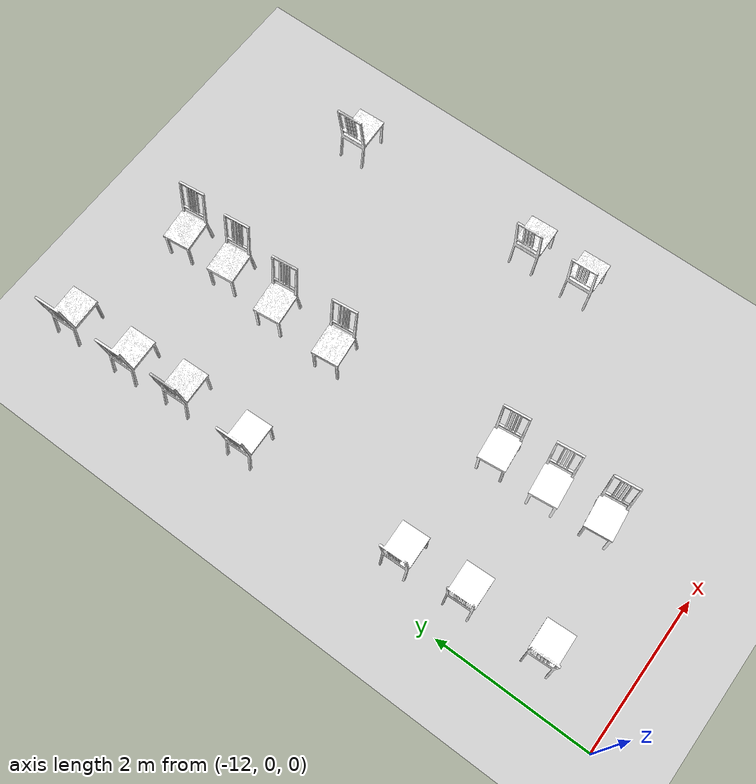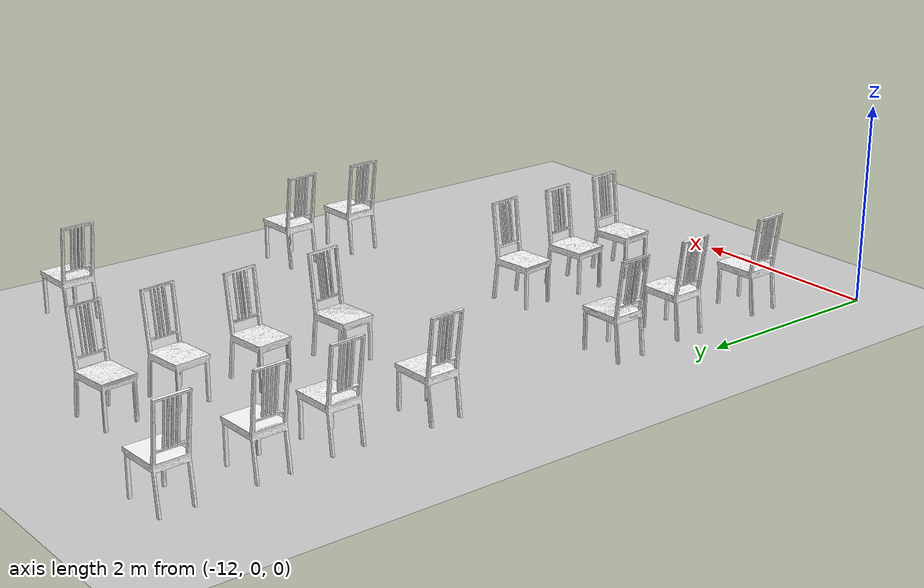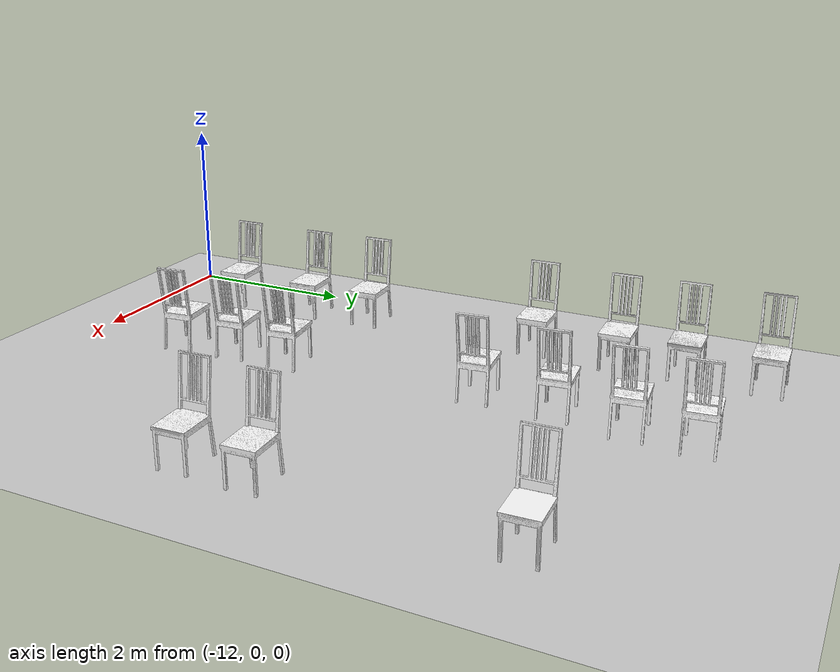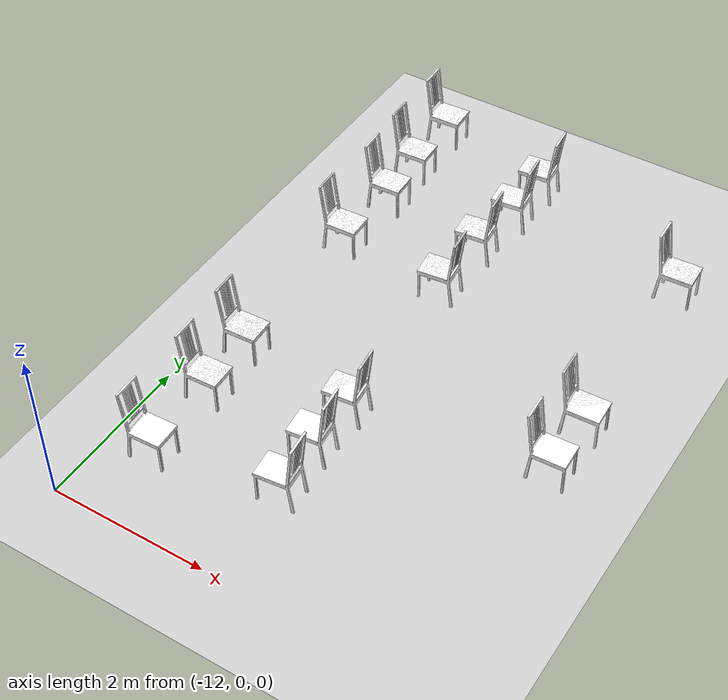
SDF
<sdf version="1.6">
 <world name="default">
  <model name="ground_plane">
   <static>1</static>
   <link name="link">
    <collision name="collision">
     <geometry><plane><normal>0 0 1</normal><size>100 100</size></plane></geometry>
     <surface>
      <contact><collide_bitmask>65535</collide_bitmask></contact>
      <friction><ode><mu>100</mu><mu2>50</mu2></ode></friction>
     </surface>
    </collision>
    <visual name="visual">
     <cast_shadows>0</cast_shadows>
     <geometry><plane><normal>0 0 1</normal><size>100 100</size></plane></geometry>
     <material>
      <script><uri>file://media/materials/scripts/gazebo.material</uri><name>Gazebo/Grey</name></script>
     </material>
    </visual>
   </link>
  </model>
  <model name="chair_ikea_borje_clone_6">
   <link name="base_link">
    <inertial>
     <mass>1</mass>
     <inertia><ixx>1</ixx><ixy>0</ixy><ixz>0</ixz><iyy>1</iyy><iyz>0</iyz><izz>1</izz></inertia>
    </inertial>
    <visual name="base_link_visual">
     <geometry><mesh><scale>1 1 1</scale><uri>model://chair_ikea_borje/meshes/model.dae</uri></mesh></geometry>
    </visual>
    <collision name="base_link_collision">
     <geometry><mesh><uri>model://chair_ikea_borje/meshes/model.dae</uri></mesh></geometry>
     <surface>
      <friction>
       <ode><mu>1</mu><mu2>1</mu2><fdir1>0 0 0</fdir1><slip1>0</slip1><slip2>0</slip2></ode>
       <torsional>
        <coefficient>1</coefficient>
        <patch_radius>0</patch_radius>
        <surface_radius>0</surface_radius>
        <use_patch_radius>1</use_patch_radius>
        <ode><slip>0</slip></ode>
       </torsional>
      </friction>
      <bounce><restitution_coefficient>0</restitution_coefficient><threshold>1e+06</threshold></bounce>
      <contact>
       <collide_without_contact>0</collide_without_contact>
       <collide_without_contact_bitmask>1</collide_without_contact_bitmask>
       <collide_bitmask>1</collide_bitmask>
       <ode>
        <soft_cfm>0</soft_cfm>
        <soft_erp>0.2</soft_erp>
        <kp>1e+13</kp>
        <kd>1</kd>
        <max_vel>0.01</max_vel>
        <min_depth>0</min_depth>
       </ode>
       <bullet>
        <split_impulse>1</split_impulse>
        <split_impulse_penetration_threshold>-0.01</split_impulse_penetration_threshold>
        <soft_cfm>0</soft_cfm>
        <soft_erp>0.2</soft_erp>
        <kp>1e+13</kp>
        <kd>1</kd>
       </bullet>
      </contact>
     </surface>
    </collision>
   </link>
   <static>1</static>
   <pose>-9.83974 7.21158 0 0 0 -1.46428</pose>
  </model>
  <model name="chair_ikea_borje_clone_7">
   <link name="base_link">
    <inertial>
     <mass>1</mass>
     <inertia><ixx>1</ixx><ixy>0</ixy><ixz>0</ixz><iyy>1</iyy><iyz>0</iyz><izz>1</izz></inertia>
    </inertial>
    <visual name="base_link_visual">
     <geometry><mesh><scale>1 1 1</scale><uri>model://chair_ikea_borje/meshes/model.dae</uri></mesh></geometry>
    </visual>
    <collision name="base_link_collision">
     <geometry><mesh><uri>model://chair_ikea_borje/meshes/model.dae</uri></mesh></geometry>
     <surface>
      <friction>
       <ode><mu>1</mu><mu2>1</mu2><fdir1>0 0 0</fdir1><slip1>0</slip1><slip2>0</slip2></ode>
       <torsional>
        <coefficient>1</coefficient>
        <patch_radius>0</patch_radius>
        <surface_radius>0</surface_radius>
        <use_patch_radius>1</use_patch_radius>
        <ode><slip>0</slip></ode>
       </torsional>
      </friction>
      <bounce><restitution_coefficient>0</restitution_coefficient><threshold>1e+06</threshold></bounce>
      <contact>
       <collide_without_contact>0</collide_without_contact>
       <collide_without_contact_bitmask>1</collide_without_contact_bitmask>
       <collide_bitmask>1</collide_bitmask>
       <ode>
        <soft_cfm>0</soft_cfm>
        <soft_erp>0.2</soft_erp>
        <kp>1e+13</kp>
        <kd>1</kd>
        <max_vel>0.01</max_vel>
        <min_depth>0</min_depth>
       </ode>
       <bullet>
        <split_impulse>1</split_impulse>
        <split_impulse_penetration_threshold>-0.01</split_impulse_penetration_threshold>
        <soft_cfm>0</soft_cfm>
        <soft_erp>0.2</soft_erp>
        <kp>1e+13</kp>
        <kd>1</kd>
       </bullet>
      </contact>
     </surface>
    </collision>
   </link>
   <static>1</static>
   <pose>-9.86284 6.52247 0 0 0 -1.46428</pose>
  </model>
  <model name="chair_ikea_borje_clone_8">
   <link name="base_link">
    <inertial>
     <mass>1</mass>
     <inertia><ixx>1</ixx><ixy>0</ixy><ixz>0</ixz><iyy>1</iyy><iyz>0</iyz><izz>1</izz></inertia>
    </inertial>
    <visual name="base_link_visual">
     <geometry><mesh><scale>1 1 1</scale><uri>model://chair_ikea_borje/meshes/model.dae</uri></mesh></geometry>
    </visual>
    <collision name="base_link_collision">
     <geometry><mesh><uri>model://chair_ikea_borje/meshes/model.dae</uri></mesh></geometry>
     <surface>
      <friction>
       <ode><mu>1</mu><mu2>1</mu2><fdir1>0 0 0</fdir1><slip1>0</slip1><slip2>0</slip2></ode>
       <torsional>
        <coefficient>1</coefficient>
        <patch_radius>0</patch_radius>
        <surface_radius>0</surface_radius>
        <use_patch_radius>1</use_patch_radius>
        <ode><slip>0</slip></ode>
       </torsional>
      </friction>
      <bounce><restitution_coefficient>0</restitution_coefficient><threshold>1e+06</threshold></bounce>
      <contact>
       <collide_without_contact>0</collide_without_contact>
       <collide_without_contact_bitmask>1</collide_without_contact_bitmask>
       <collide_bitmask>1</collide_bitmask>
       <ode>
        <soft_cfm>0</soft_cfm>
        <soft_erp>0.2</soft_erp>
        <kp>1e+13</kp>
        <kd>1</kd>
        <max_vel>0.01</max_vel>
        <min_depth>0</min_depth>
       </ode>
       <bullet>
        <split_impulse>1</split_impulse>
        <split_impulse_penetration_threshold>-0.01</split_impulse_penetration_threshold>
        <soft_cfm>0</soft_cfm>
        <soft_erp>0.2</soft_erp>
        <kp>1e+13</kp>
        <kd>1</kd>
       </bullet>
      </contact>
     </surface>
    </collision>
   </link>
   <static>1</static>
   <pose>-9.95206 5.74886 0 0 0 -1.46428</pose>
  </model>
  <model name="chair_ikea_borje_clone_9">
   <link name="base_link">
    <inertial>
     <mass>1</mass>
     <inertia><ixx>1</ixx><ixy>0</ixy><ixz>0</ixz><iyy>1</iyy><iyz>0</iyz><izz>1</izz></inertia>
    </inertial>
    <visual name="base_link_visual">
     <geometry><mesh><scale>1 1 1</scale><uri>model://chair_ikea_borje/meshes/model.dae</uri></mesh></geometry>
    </visual>
    <collision name="base_link_collision">
     <geometry><mesh><uri>model://chair_ikea_borje/meshes/model.dae</uri></mesh></geometry>
     <surface>
      <friction>
       <ode><mu>1</mu><mu2>1</mu2><fdir1>0 0 0</fdir1><slip1>0</slip1><slip2>0</slip2></ode>
       <torsional>
        <coefficient>1</coefficient>
        <patch_radius>0</patch_radius>
        <surface_radius>0</surface_radius>
        <use_patch_radius>1</use_patch_radius>
        <ode><slip>0</slip></ode>
       </torsional>
      </friction>
      <bounce><restitution_coefficient>0</restitution_coefficient><threshold>1e+06</threshold></bounce>
      <contact>
       <collide_without_contact>0</collide_without_contact>
       <collide_without_contact_bitmask>1</collide_without_contact_bitmask>
       <collide_bitmask>1</collide_bitmask>
       <ode>
        <soft_cfm>0</soft_cfm>
        <soft_erp>0.2</soft_erp>
        <kp>1e+13</kp>
        <kd>1</kd>
        <max_vel>0.01</max_vel>
        <min_depth>0</min_depth>
       </ode>
       <bullet>
        <split_impulse>1</split_impulse>
        <split_impulse_penetration_threshold>-0.01</split_impulse_penetration_threshold>
        <soft_cfm>0</soft_cfm>
        <soft_erp>0.2</soft_erp>
        <kp>1e+13</kp>
        <kd>1</kd>
       </bullet>
      </contact>
     </surface>
    </collision>
   </link>
   <static>1</static>
   <pose>-9.97364 4.87725 0 0 0 -1.46428</pose>
  </model>
  <model name="chair_ikea_borje_clone_10">
   <link name="base_link">
    <inertial>
     <mass>1</mass>
     <inertia><ixx>1</ixx><ixy>0</ixy><ixz>0</ixz><iyy>1</iyy><iyz>0</iyz><izz>1</izz></inertia>
    </inertial>
    <visual name="base_link_visual">
     <geometry><mesh><scale>1 1 1</scale><uri>model://chair_ikea_borje/meshes/model.dae</uri></mesh></geometry>
    </visual>
    <collision name="base_link_collision">
     <geometry><mesh><uri>model://chair_ikea_borje/meshes/model.dae</uri></mesh></geometry>
     <surface>
      <friction>
       <ode><mu>1</mu><mu2>1</mu2><fdir1>0 0 0</fdir1><slip1>0</slip1><slip2>0</slip2></ode>
       <torsional>
        <coefficient>1</coefficient>
        <patch_radius>0</patch_radius>
        <surface_radius>0</surface_radius>
        <use_patch_radius>1</use_patch_radius>
        <ode><slip>0</slip></ode>
       </torsional>
      </friction>
      <bounce><restitution_coefficient>0</restitution_coefficient><threshold>1e+06</threshold></bounce>
      <contact>
       <collide_without_contact>0</collide_without_contact>
       <collide_without_contact_bitmask>1</collide_without_contact_bitmask>
       <collide_bitmask>1</collide_bitmask>
       <ode>
        <soft_cfm>0</soft_cfm>
        <soft_erp>0.2</soft_erp>
        <kp>1e+13</kp>
        <kd>1</kd>
        <max_vel>0.01</max_vel>
        <min_depth>0</min_depth>
       </ode>
       <bullet>
        <split_impulse>1</split_impulse>
        <split_impulse_penetration_threshold>-0.01</split_impulse_penetration_threshold>
        <soft_cfm>0</soft_cfm>
        <soft_erp>0.2</soft_erp>
        <kp>1e+13</kp>
        <kd>1</kd>
       </bullet>
      </contact>
     </surface>
    </collision>
   </link>
   <static>1</static>
   <pose>-9.86319 2.62988 0 0 0 -1.46428</pose>
  </model>
  <model name="chair_ikea_borje_clone_11">
   <link name="base_link">
    <inertial>
     <mass>1</mass>
     <inertia><ixx>1</ixx><ixy>0</ixy><ixz>0</ixz><iyy>1</iyy><iyz>0</iyz><izz>1</izz></inertia>
    </inertial>
    <visual name="base_link_visual">
     <geometry><mesh><scale>1 1 1</scale><uri>model://chair_ikea_borje/meshes/model.dae</uri></mesh></geometry>
    </visual>
    <collision name="base_link_collision">
     <geometry><mesh><uri>model://chair_ikea_borje/meshes/model.dae</uri></mesh></geometry>
     <surface>
      <friction>
       <ode><mu>1</mu><mu2>1</mu2><fdir1>0 0 0</fdir1><slip1>0</slip1><slip2>0</slip2></ode>
       <torsional>
        <coefficient>1</coefficient>
        <patch_radius>0</patch_radius>
        <surface_radius>0</surface_radius>
        <use_patch_radius>1</use_patch_radius>
        <ode><slip>0</slip></ode>
       </torsional>
      </friction>
      <bounce><restitution_coefficient>0</restitution_coefficient><threshold>1e+06</threshold></bounce>
      <contact>
       <collide_without_contact>0</collide_without_contact>
       <collide_without_contact_bitmask>1</collide_without_contact_bitmask>
       <collide_bitmask>1</collide_bitmask>
       <ode>
        <soft_cfm>0</soft_cfm>
        <soft_erp>0.2</soft_erp>
        <kp>1e+13</kp>
        <kd>1</kd>
        <max_vel>0.01</max_vel>
        <min_depth>0</min_depth>
       </ode>
       <bullet>
        <split_impulse>1</split_impulse>
        <split_impulse_penetration_threshold>-0.01</split_impulse_penetration_threshold>
        <soft_cfm>0</soft_cfm>
        <soft_erp>0.2</soft_erp>
        <kp>1e+13</kp>
        <kd>1</kd>
       </bullet>
      </contact>
     </surface>
    </collision>
   </link>
   <static>1</static>
   <pose>-9.86843 1.9401 0 0 0 -1.46428</pose>
  </model>
  <model name="chair_ikea_borje_clone_12">
   <link name="base_link">
    <inertial>
     <mass>1</mass>
     <inertia><ixx>1</ixx><ixy>0</ixy><ixz>0</ixz><iyy>1</iyy><iyz>0</iyz><izz>1</izz></inertia>
    </inertial>
    <visual name="base_link_visual">
     <geometry><mesh><scale>1 1 1</scale><uri>model://chair_ikea_borje/meshes/model.dae</uri></mesh></geometry>
    </visual>
    <collision name="base_link_collision">
     <geometry><mesh><uri>model://chair_ikea_borje/meshes/model.dae</uri></mesh></geometry>
     <surface>
      <friction>
       <ode><mu>1</mu><mu2>1</mu2><fdir1>0 0 0</fdir1><slip1>0</slip1><slip2>0</slip2></ode>
       <torsional>
        <coefficient>1</coefficient>
        <patch_radius>0</patch_radius>
        <surface_radius>0</surface_radius>
        <use_patch_radius>1</use_patch_radius>
        <ode><slip>0</slip></ode>
       </torsional>
      </friction>
      <bounce><restitution_coefficient>0</restitution_coefficient><threshold>1e+06</threshold></bounce>
      <contact>
       <collide_without_contact>0</collide_without_contact>
       <collide_without_contact_bitmask>1</collide_without_contact_bitmask>
       <collide_bitmask>1</collide_bitmask>
       <ode>
        <soft_cfm>0</soft_cfm>
        <soft_erp>0.2</soft_erp>
        <kp>1e+13</kp>
        <kd>1</kd>
        <max_vel>0.01</max_vel>
        <min_depth>0</min_depth>
       </ode>
       <bullet>
        <split_impulse>1</split_impulse>
        <split_impulse_penetration_threshold>-0.01</split_impulse_penetration_threshold>
        <soft_cfm>0</soft_cfm>
        <soft_erp>0.2</soft_erp>
        <kp>1e+13</kp>
        <kd>1</kd>
       </bullet>
      </contact>
     </surface>
    </collision>
   </link>
   <static>1</static>
   <pose>-9.81896 1.25627 0 0 0 -1.46428</pose>
  </model>
  <model name="chair_ikea_borje_0_clone_2">
   <link name="base_link">
    <inertial>
     <mass>1</mass>
     <inertia><ixx>1</ixx><ixy>0</ixy><ixz>0</ixz><iyy>1</iyy><iyz>0</iyz><izz>1</izz></inertia>
    </inertial>
    <visual name="base_link_visual">
     <geometry><mesh><scale>1 1 1</scale><uri>model://chair_ikea_borje/meshes/model.dae</uri></mesh></geometry>
    </visual>
    <collision name="base_link_collision">
     <geometry><mesh><uri>model://chair_ikea_borje/meshes/model.dae</uri></mesh></geometry>
     <surface>
      <friction>
       <ode><mu>1</mu><mu2>1</mu2><fdir1>0 0 0</fdir1><slip1>0</slip1><slip2>0</slip2></ode>
       <torsional>
        <coefficient>1</coefficient>
        <patch_radius>0</patch_radius>
        <surface_radius>0</surface_radius>
        <use_patch_radius>1</use_patch_radius>
        <ode><slip>0</slip></ode>
       </torsional>
      </friction>
      <bounce><restitution_coefficient>0</restitution_coefficient><threshold>1e+06</threshold></bounce>
      <contact>
       <collide_without_contact>0</collide_without_contact>
       <collide_without_contact_bitmask>1</collide_without_contact_bitmask>
       <collide_bitmask>1</collide_bitmask>
       <ode>
        <soft_cfm>0</soft_cfm>
        <soft_erp>0.2</soft_erp>
        <kp>1e+13</kp>
        <kd>1</kd>
        <max_vel>0.01</max_vel>
        <min_depth>0</min_depth>
       </ode>
       <bullet>
        <split_impulse>1</split_impulse>
        <split_impulse_penetration_threshold>-0.01</split_impulse_penetration_threshold>
        <soft_cfm>0</soft_cfm>
        <soft_erp>0.2</soft_erp>
        <kp>1e+13</kp>
        <kd>1</kd>
       </bullet>
      </contact>
     </surface>
    </collision>
   </link>
   <static>1</static>
   <pose>-7.54404 3.78593 0 0 -0 1.61155</pose>
  </model>
  <model name="chair_ikea_borje_0_clone_3">
   <link name="base_link">
    <inertial>
     <mass>1</mass>
     <inertia><ixx>1</ixx><ixy>0</ixy><ixz>0</ixz><iyy>1</iyy><iyz>0</iyz><izz>1</izz></inertia>
    </inertial>
    <visual name="base_link_visual">
     <geometry><mesh><scale>1 1 1</scale><uri>model://chair_ikea_borje/meshes/model.dae</uri></mesh></geometry>
    </visual>
    <collision name="base_link_collision">
     <geometry><mesh><uri>model://chair_ikea_borje/meshes/model.dae</uri></mesh></geometry>
     <surface>
      <friction>
       <ode><mu>1</mu><mu2>1</mu2><fdir1>0 0 0</fdir1><slip1>0</slip1><slip2>0</slip2></ode>
       <torsional>
        <coefficient>1</coefficient>
        <patch_radius>0</patch_radius>
        <surface_radius>0</surface_radius>
        <use_patch_radius>1</use_patch_radius>
        <ode><slip>0</slip></ode>
       </torsional>
      </friction>
      <bounce><restitution_coefficient>0</restitution_coefficient><threshold>1e+06</threshold></bounce>
      <contact>
       <collide_without_contact>0</collide_without_contact>
       <collide_without_contact_bitmask>1</collide_without_contact_bitmask>
       <collide_bitmask>1</collide_bitmask>
       <ode>
        <soft_cfm>0</soft_cfm>
        <soft_erp>0.2</soft_erp>
        <kp>1e+13</kp>
        <kd>1</kd>
        <max_vel>0.01</max_vel>
        <min_depth>0</min_depth>
       </ode>
       <bullet>
        <split_impulse>1</split_impulse>
        <split_impulse_penetration_threshold>-0.01</split_impulse_penetration_threshold>
        <soft_cfm>0</soft_cfm>
        <soft_erp>0.2</soft_erp>
        <kp>1e+13</kp>
        <kd>1</kd>
       </bullet>
      </contact>
     </surface>
    </collision>
   </link>
   <static>1</static>
   <pose>-7.56312 3.02449 0 0 -0 1.61155</pose>
  </model>
  <model name="chair_ikea_borje_0_clone_7">
   <link name="base_link">
    <inertial>
     <mass>1</mass>
     <inertia><ixx>1</ixx><ixy>0</ixy><ixz>0</ixz><iyy>1</iyy><iyz>0</iyz><izz>1</izz></inertia>
    </inertial>
    <visual name="base_link_visual">
     <geometry><mesh><scale>1 1 1</scale><uri>model://chair_ikea_borje/meshes/model.dae</uri></mesh></geometry>
    </visual>
    <collision name="base_link_collision">
     <geometry><mesh><uri>model://chair_ikea_borje/meshes/model.dae</uri></mesh></geometry>
     <surface>
      <friction>
       <ode><mu>1</mu><mu2>1</mu2><fdir1>0 0 0</fdir1><slip1>0</slip1><slip2>0</slip2></ode>
       <torsional>
        <coefficient>1</coefficient>
        <patch_radius>0</patch_radius>
        <surface_radius>0</surface_radius>
        <use_patch_radius>1</use_patch_radius>
        <ode><slip>0</slip></ode>
       </torsional>
      </friction>
      <bounce><restitution_coefficient>0</restitution_coefficient><threshold>1e+06</threshold></bounce>
      <contact>
       <collide_without_contact>0</collide_without_contact>
       <collide_without_contact_bitmask>1</collide_without_contact_bitmask>
       <collide_bitmask>1</collide_bitmask>
       <ode>
        <soft_cfm>0</soft_cfm>
        <soft_erp>0.2</soft_erp>
        <kp>1e+13</kp>
        <kd>1</kd>
        <max_vel>0.01</max_vel>
        <min_depth>0</min_depth>
       </ode>
       <bullet>
        <split_impulse>1</split_impulse>
        <split_impulse_penetration_threshold>-0.01</split_impulse_penetration_threshold>
        <soft_cfm>0</soft_cfm>
        <soft_erp>0.2</soft_erp>
        <kp>1e+13</kp>
        <kd>1</kd>
       </bullet>
      </contact>
     </surface>
    </collision>
   </link>
   <static>1</static>
   <pose>-11.5088 2.81405 0 0 -0 1.61155</pose>
  </model>
  <model name="chair_ikea_borje_0_clone_8">
   <link name="base_link">
    <inertial>
     <mass>1</mass>
     <inertia><ixx>1</ixx><ixy>0</ixy><ixz>0</ixz><iyy>1</iyy><iyz>0</iyz><izz>1</izz></inertia>
    </inertial>
    <visual name="base_link_visual">
     <geometry><mesh><scale>1 1 1</scale><uri>model://chair_ikea_borje/meshes/model.dae</uri></mesh></geometry>
    </visual>
    <collision name="base_link_collision">
     <geometry><mesh><uri>model://chair_ikea_borje/meshes/model.dae</uri></mesh></geometry>
     <surface>
      <friction>
       <ode><mu>1</mu><mu2>1</mu2><fdir1>0 0 0</fdir1><slip1>0</slip1><slip2>0</slip2></ode>
       <torsional>
        <coefficient>1</coefficient>
        <patch_radius>0</patch_radius>
        <surface_radius>0</surface_radius>
        <use_patch_radius>1</use_patch_radius>
        <ode><slip>0</slip></ode>
       </torsional>
      </friction>
      <bounce><restitution_coefficient>0</restitution_coefficient><threshold>1e+06</threshold></bounce>
      <contact>
       <collide_without_contact>0</collide_without_contact>
       <collide_without_contact_bitmask>1</collide_without_contact_bitmask>
       <collide_bitmask>1</collide_bitmask>
       <ode>
        <soft_cfm>0</soft_cfm>
        <soft_erp>0.2</soft_erp>
        <kp>1e+13</kp>
        <kd>1</kd>
        <max_vel>0.01</max_vel>
        <min_depth>0</min_depth>
       </ode>
       <bullet>
        <split_impulse>1</split_impulse>
        <split_impulse_penetration_threshold>-0.01</split_impulse_penetration_threshold>
        <soft_cfm>0</soft_cfm>
        <soft_erp>0.2</soft_erp>
        <kp>1e+13</kp>
        <kd>1</kd>
       </bullet>
      </contact>
     </surface>
    </collision>
   </link>
   <static>1</static>
   <pose>-11.4542 2 0 0 -0 1.61155</pose>
  </model>
  <model name="chair_ikea_borje_0_clone_9">
   <link name="base_link">
    <inertial>
     <mass>1</mass>
     <inertia><ixx>1</ixx><ixy>0</ixy><ixz>0</ixz><iyy>1</iyy><iyz>0</iyz><izz>1</izz></inertia>
    </inertial>
    <visual name="base_link_visual">
     <geometry><mesh><scale>1 1 1</scale><uri>model://chair_ikea_borje/meshes/model.dae</uri></mesh></geometry>
    </visual>
    <collision name="base_link_collision">
     <geometry><mesh><uri>model://chair_ikea_borje/meshes/model.dae</uri></mesh></geometry>
     <surface>
      <friction>
       <ode><mu>1</mu><mu2>1</mu2><fdir1>0 0 0</fdir1><slip1>0</slip1><slip2>0</slip2></ode>
       <torsional>
        <coefficient>1</coefficient>
        <patch_radius>0</patch_radius>
        <surface_radius>0</surface_radius>
        <use_patch_radius>1</use_patch_radius>
        <ode><slip>0</slip></ode>
       </torsional>
      </friction>
      <bounce><restitution_coefficient>0</restitution_coefficient><threshold>1e+06</threshold></bounce>
      <contact>
       <collide_without_contact>0</collide_without_contact>
       <collide_without_contact_bitmask>1</collide_without_contact_bitmask>
       <collide_bitmask>1</collide_bitmask>
       <ode>
        <soft_cfm>0</soft_cfm>
        <soft_erp>0.2</soft_erp>
        <kp>1e+13</kp>
        <kd>1</kd>
        <max_vel>0.01</max_vel>
        <min_depth>0</min_depth>
       </ode>
       <bullet>
        <split_impulse>1</split_impulse>
        <split_impulse_penetration_threshold>-0.01</split_impulse_penetration_threshold>
        <soft_cfm>0</soft_cfm>
        <soft_erp>0.2</soft_erp>
        <kp>1e+13</kp>
        <kd>1</kd>
       </bullet>
      </contact>
     </surface>
    </collision>
   </link>
   <static>1</static>
   <pose>-11.4428 0.968237 0 0 -0 1.61155</pose>
  </model>
  <model name="chair_ikea_borje_0_clone_10">
   <link name="base_link">
    <inertial>
     <mass>1</mass>
     <inertia><ixx>1</ixx><ixy>0</ixy><ixz>0</ixz><iyy>1</iyy><iyz>0</iyz><izz>1</izz></inertia>
    </inertial>
    <visual name="base_link_visual">
     <geometry><mesh><scale>1 1 1</scale><uri>model://chair_ikea_borje/meshes/model.dae</uri></mesh></geometry>
    </visual>
    <collision name="base_link_collision">
     <geometry><mesh><uri>model://chair_ikea_borje/meshes/model.dae</uri></mesh></geometry>
     <surface>
      <friction>
       <ode><mu>1</mu><mu2>1</mu2><fdir1>0 0 0</fdir1><slip1>0</slip1><slip2>0</slip2></ode>
       <torsional>
        <coefficient>1</coefficient>
        <patch_radius>0</patch_radius>
        <surface_radius>0</surface_radius>
        <use_patch_radius>1</use_patch_radius>
        <ode><slip>0</slip></ode>
       </torsional>
      </friction>
      <bounce><restitution_coefficient>0</restitution_coefficient><threshold>1e+06</threshold></bounce>
      <contact>
       <collide_without_contact>0</collide_without_contact>
       <collide_without_contact_bitmask>1</collide_without_contact_bitmask>
       <collide_bitmask>1</collide_bitmask>
       <ode>
        <soft_cfm>0</soft_cfm>
        <soft_erp>0.2</soft_erp>
        <kp>1e+13</kp>
        <kd>1</kd>
        <max_vel>0.01</max_vel>
        <min_depth>0</min_depth>
       </ode>
       <bullet>
        <split_impulse>1</split_impulse>
        <split_impulse_penetration_threshold>-0.01</split_impulse_penetration_threshold>
        <soft_cfm>0</soft_cfm>
        <soft_erp>0.2</soft_erp>
        <kp>1e+13</kp>
        <kd>1</kd>
       </bullet>
      </contact>
     </surface>
    </collision>
   </link>
   <static>1</static>
   <pose>-11.5305 4.97783 0 0 -0 1.61155</pose>
  </model>
  <model name="chair_ikea_borje_0_clone_11">
   <link name="base_link">
    <inertial>
     <mass>1</mass>
     <inertia><ixx>1</ixx><ixy>0</ixy><ixz>0</ixz><iyy>1</iyy><iyz>0</iyz><izz>1</izz></inertia>
    </inertial>
    <visual name="base_link_visual">
     <geometry><mesh><scale>1 1 1</scale><uri>model://chair_ikea_borje/meshes/model.dae</uri></mesh></geometry>
    </visual>
    <collision name="base_link_collision">
     <geometry><mesh><uri>model://chair_ikea_borje/meshes/model.dae</uri></mesh></geometry>
     <surface>
      <friction>
       <ode><mu>1</mu><mu2>1</mu2><fdir1>0 0 0</fdir1><slip1>0</slip1><slip2>0</slip2></ode>
       <torsional>
        <coefficient>1</coefficient>
        <patch_radius>0</patch_radius>
        <surface_radius>0</surface_radius>
        <use_patch_radius>1</use_patch_radius>
        <ode><slip>0</slip></ode>
       </torsional>
      </friction>
      <bounce><restitution_coefficient>0</restitution_coefficient><threshold>1e+06</threshold></bounce>
      <contact>
       <collide_without_contact>0</collide_without_contact>
       <collide_without_contact_bitmask>1</collide_without_contact_bitmask>
       <collide_bitmask>1</collide_bitmask>
       <ode>
        <soft_cfm>0</soft_cfm>
        <soft_erp>0.2</soft_erp>
        <kp>1e+13</kp>
        <kd>1</kd>
        <max_vel>0.01</max_vel>
        <min_depth>0</min_depth>
       </ode>
       <bullet>
        <split_impulse>1</split_impulse>
        <split_impulse_penetration_threshold>-0.01</split_impulse_penetration_threshold>
        <soft_cfm>0</soft_cfm>
        <soft_erp>0.2</soft_erp>
        <kp>1e+13</kp>
        <kd>1</kd>
       </bullet>
      </contact>
     </surface>
    </collision>
   </link>
   <static>1</static>
   <pose>-11.4821 5.9482 0 0 -0 1.61155</pose>
  </model>
  <model name="chair_ikea_borje_0_clone_12">
   <link name="base_link">
    <inertial>
     <mass>1</mass>
     <inertia><ixx>1</ixx><ixy>0</ixy><ixz>0</ixz><iyy>1</iyy><iyz>0</iyz><izz>1</izz></inertia>
    </inertial>
    <visual name="base_link_visual">
     <geometry><mesh><scale>1 1 1</scale><uri>model://chair_ikea_borje/meshes/model.dae</uri></mesh></geometry>
    </visual>
    <collision name="base_link_collision">
     <geometry><mesh><uri>model://chair_ikea_borje/meshes/model.dae</uri></mesh></geometry>
     <surface>
      <friction>
       <ode><mu>1</mu><mu2>1</mu2><fdir1>0 0 0</fdir1><slip1>0</slip1><slip2>0</slip2></ode>
       <torsional>
        <coefficient>1</coefficient>
        <patch_radius>0</patch_radius>
        <surface_radius>0</surface_radius>
        <use_patch_radius>1</use_patch_radius>
        <ode><slip>0</slip></ode>
       </torsional>
      </friction>
      <bounce><restitution_coefficient>0</restitution_coefficient><threshold>1e+06</threshold></bounce>
      <contact>
       <collide_without_contact>0</collide_without_contact>
       <collide_without_contact_bitmask>1</collide_without_contact_bitmask>
       <collide_bitmask>1</collide_bitmask>
       <ode>
        <soft_cfm>0</soft_cfm>
        <soft_erp>0.2</soft_erp>
        <kp>1e+13</kp>
        <kd>1</kd>
        <max_vel>0.01</max_vel>
        <min_depth>0</min_depth>
       </ode>
       <bullet>
        <split_impulse>1</split_impulse>
        <split_impulse_penetration_threshold>-0.01</split_impulse_penetration_threshold>
        <soft_cfm>0</soft_cfm>
        <soft_erp>0.2</soft_erp>
        <kp>1e+13</kp>
        <kd>1</kd>
       </bullet>
      </contact>
     </surface>
    </collision>
   </link>
   <static>1</static>
   <pose>-11.5344 6.69767 0 0 -0 1.61155</pose>
  </model>
  <model name="chair_ikea_borje_0_clone_13">
   <link name="base_link">
    <inertial>
     <mass>1</mass>
     <inertia><ixx>1</ixx><ixy>0</ixy><ixz>0</ixz><iyy>1</iyy><iyz>0</iyz><izz>1</izz></inertia>
    </inertial>
    <visual name="base_link_visual">
     <geometry><mesh><scale>1 1 1</scale><uri>model://chair_ikea_borje/meshes/model.dae</uri></mesh></geometry>
    </visual>
    <collision name="base_link_collision">
     <geometry><mesh><uri>model://chair_ikea_borje/meshes/model.dae</uri></mesh></geometry>
     <surface>
      <friction>
       <ode><mu>1</mu><mu2>1</mu2><fdir1>0 0 0</fdir1><slip1>0</slip1><slip2>0</slip2></ode>
       <torsional>
        <coefficient>1</coefficient>
        <patch_radius>0</patch_radius>
        <surface_radius>0</surface_radius>
        <use_patch_radius>1</use_patch_radius>
        <ode><slip>0</slip></ode>
       </torsional>
      </friction>
      <bounce><restitution_coefficient>0</restitution_coefficient><threshold>1e+06</threshold></bounce>
      <contact>
       <collide_without_contact>0</collide_without_contact>
       <collide_without_contact_bitmask>1</collide_without_contact_bitmask>
       <collide_bitmask>1</collide_bitmask>
       <ode>
        <soft_cfm>0</soft_cfm>
        <soft_erp>0.2</soft_erp>
        <kp>1e+13</kp>
        <kd>1</kd>
        <max_vel>0.01</max_vel>
        <min_depth>0</min_depth>
       </ode>
       <bullet>
        <split_impulse>1</split_impulse>
        <split_impulse_penetration_threshold>-0.01</split_impulse_penetration_threshold>
        <soft_cfm>0</soft_cfm>
        <soft_erp>0.2</soft_erp>
        <kp>1e+13</kp>
        <kd>1</kd>
       </bullet>
      </contact>
     </surface>
    </collision>
   </link>
   <static>1</static>
   <pose>-11.5479 7.57563 0 0 -0 1.61155</pose>
  </model>
  <model name="chair_ikea_borje_0_clone_15">
   <link name="base_link">
    <inertial>
     <mass>1</mass>
     <inertia><ixx>1</ixx><ixy>0</ixy><ixz>0</ixz><iyy>1</iyy><iyz>0</iyz><izz>1</izz></inertia>
    </inertial>
    <visual name="base_link_visual">
     <geometry><mesh><scale>1 1 1</scale><uri>model://chair_ikea_borje/meshes/model.dae</uri></mesh></geometry>
    </visual>
    <collision name="base_link_collision">
     <geometry><mesh><uri>model://chair_ikea_borje/meshes/model.dae</uri></mesh></geometry>
     <surface>
      <friction>
       <ode><mu>1</mu><mu2>1</mu2><fdir1>0 0 0</fdir1><slip1>0</slip1><slip2>0</slip2></ode>
       <torsional>
        <coefficient>1</coefficient>
        <patch_radius>0</patch_radius>
        <surface_radius>0</surface_radius>
        <use_patch_radius>1</use_patch_radius>
        <ode><slip>0</slip></ode>
       </torsional>
      </friction>
      <bounce><restitution_coefficient>0</restitution_coefficient><threshold>1e+06</threshold></bounce>
      <contact>
       <collide_without_contact>0</collide_without_contact>
       <collide_without_contact_bitmask>1</collide_without_contact_bitmask>
       <collide_bitmask>1</collide_bitmask>
       <ode>
        <soft_cfm>0</soft_cfm>
        <soft_erp>0.2</soft_erp>
        <kp>1e+13</kp>
        <kd>1</kd>
        <max_vel>0.01</max_vel>
        <min_depth>0</min_depth>
       </ode>
       <bullet>
        <split_impulse>1</split_impulse>
        <split_impulse_penetration_threshold>-0.01</split_impulse_penetration_threshold>
        <soft_cfm>0</soft_cfm>
        <soft_erp>0.2</soft_erp>
        <kp>1e+13</kp>
        <kd>1</kd>
       </bullet>
      </contact>
     </surface>
    </collision>
   </link>
   <static>1</static>
   <pose>-7.57266 6.35232 0 0 -0 1.61155</pose>
  </model>
 </world>
</sdf>
